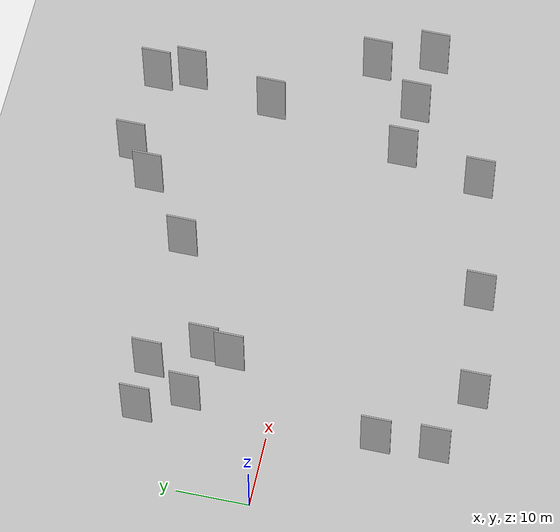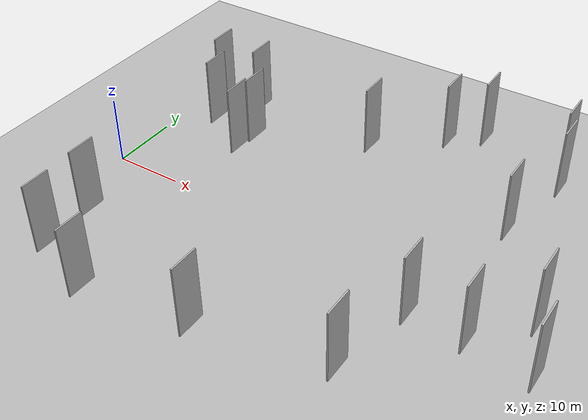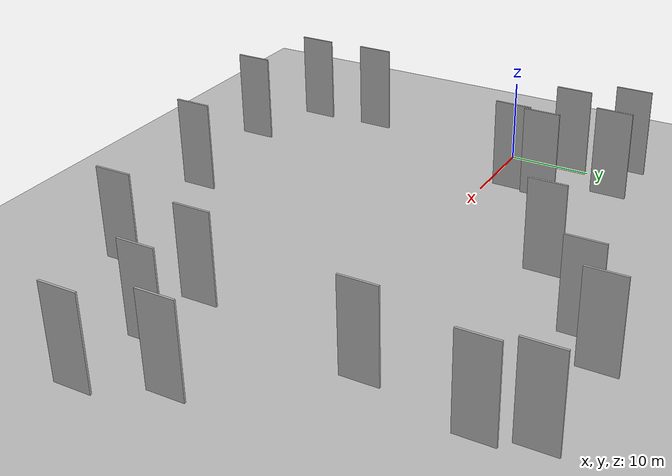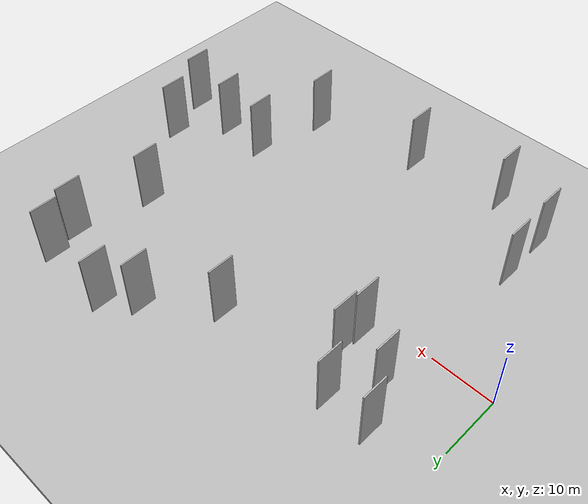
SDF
<?xml version="1.0" encoding="utf-8"?>

<sdf version="1.6">

   <world name="default">

      <gui fullscreen="0">

         <camera name="user_camera">

            <pose>-15 0 4.57585 0 0 0</pose>

            <view_controller>orbit</view_controller>

         </camera>

      </gui>

      <scene>

         <sky>

           <clouds>

             <speed>12</speed>

           </clouds>

         </sky>

         <ambient>0.4 0.4 0.4 1</ambient>

         <background>0.7 0.7 0.7 1</background>

         <shadows>1</shadows>

      </scene>

      <gravity>0 0 -9.8066</gravity>

      <magnetic_field>6e-06 2.3e-05 -4.2e-05</magnetic_field>

      <physics default="0" name="default_physics" type="ode">

         <ode>

            <solver>

               <type>quick</type>

               <iters>10</iters>

               <sor>1.0</sor>

               <use_dynamic_moi_rescaling>0</use_dynamic_moi_rescaling>

            </solver>

            <constraints>

               <cfm>0</cfm>

               <erp>0.2</erp>

               <contact_max_correcting_vel>100</contact_max_correcting_vel>

               <contact_surface_layer>0.001</contact_surface_layer>

            </constraints>

         </ode>

         <max_step_size>0.004</max_step_size>

         <real_time_factor>1</real_time_factor>

         <real_time_update_rate>250</real_time_update_rate>

      </physics>

      <light name="sun" type="directional">

         <cast_shadows>1</cast_shadows>

         <pose>0 0 10 0 0 0</pose>

         <diffuse>0.8 0.8 0.8 1</diffuse>

         <specular>0.2 0.2 0.2 1</specular>

         <attenuation>

            <range>1000</range>

            <constant>0.9</constant>

            <linear>0.01</linear>

            <quadratic>0.001</quadratic>

         </attenuation>

         <direction>-0.5 0.1 -0.9</direction>

      </light>

      <include>

         <name>ground_plane_1</name>

         <uri>model://HANNAS_ground_plane</uri>

         <pose>0 0 0  0 0 0</pose>

      </include>

      <include>

         <name>ground_plane_2</name>

         <uri>model://HANNAS_ground_plane</uri>

         <pose>100 0 0  0 0 0</pose>

      </include>

      <model name="HANNAS_wall_1">

         <static>1</static>

         <pose frame="">59.9722 -9.9413 5.0 0.000000 0.000000 1.570796</pose>

         <link name="link">

            <pose frame="">0 0 5.00 0 0 0</pose>

            <collision name="collision">

               <geometry>

                  <box>

                     <size>4.00 0.2 10.00</size>

                  </box>

               </geometry>

               <max_contacts>10</max_contacts>

               <surface>

                  <contact>

                     <ode/>

                  </contact>

                  <bounce/>

                  <friction>

                     <torsional>

                        <ode/>

                     </torsional>

                     <ode/>

                  </friction>

               </surface>

            </collision>

            <visual name="visual">

               <cast_shadows>0</cast_shadows>

               <geometry>

                  <box>

                     <size>4.00 0.2 10.00</size>

                  </box>

               </geometry>

               <material>

                  <script>

                     <uri>model://HANNAS_wall/materials/scripts</uri>

                     <uri>model://HANNAS_wall/materials/textures</uri>

                     <name>vrc/HANNAS_wall</name>

                  </script>

               </material>

            </visual>

            <self_collide>0</self_collide>

            <enable_wind>0</enable_wind>

            <kinematic>0</kinematic>

         </link>

      </model>

      <model name="HANNAS_wall_2">

         <static>1</static>

         <pose frame="">32.5142 16.6050 5.0 0.000000 0.000000 1.570796</pose>

         <link name="link">

            <pose frame="">0 0 5.00 0 0 0</pose>

            <collision name="collision">

               <geometry>

                  <box>

                     <size>4.00 0.2 10.00</size>

                  </box>

               </geometry>

               <max_contacts>10</max_contacts>

               <surface>

                  <contact>

                     <ode/>

                  </contact>

                  <bounce/>

                  <friction>

                     <torsional>

                        <ode/>

                     </torsional>

                     <ode/>

                  </friction>

               </surface>

            </collision>

            <visual name="visual">

               <cast_shadows>0</cast_shadows>

               <geometry>

                  <box>

                     <size>4.00 0.2 10.00</size>

                  </box>

               </geometry>

               <material>

                  <script>

                     <uri>model://HANNAS_wall/materials/scripts</uri>

                     <uri>model://HANNAS_wall/materials/textures</uri>

                     <name>vrc/HANNAS_wall</name>

                  </script>

               </material>

            </visual>

            <self_collide>0</self_collide>

            <enable_wind>0</enable_wind>

            <kinematic>0</kinematic>

         </link>

      </model>

      <model name="HANNAS_wall_3">

         <static>1</static>

         <pose frame="">65.5373 -3.3900 5.0 0.000000 0.000000 1.570796</pose>

         <link name="link">

            <pose frame="">0 0 5.00 0 0 0</pose>

            <collision name="collision">

               <geometry>

                  <box>

                     <size>4.00 0.2 10.00</size>

                  </box>

               </geometry>

               <max_contacts>10</max_contacts>

               <surface>

                  <contact>

                     <ode/>

                  </contact>

                  <bounce/>

                  <friction>

                     <torsional>

                        <ode/>

                     </torsional>

                     <ode/>

                  </friction>

               </surface>

            </collision>

            <visual name="visual">

               <cast_shadows>0</cast_shadows>

               <geometry>

                  <box>

                     <size>4.00 0.2 10.00</size>

                  </box>

               </geometry>

               <material>

                  <script>

                     <uri>model://HANNAS_wall/materials/scripts</uri>

                     <uri>model://HANNAS_wall/materials/textures</uri>

                     <name>vrc/HANNAS_wall</name>

                  </script>

               </material>

            </visual>

            <self_collide>0</self_collide>

            <enable_wind>0</enable_wind>

            <kinematic>0</kinematic>

         </link>

      </model>

      <model name="HANNAS_wall_4">

         <static>1</static>

         <pose frame="">13.6850 16.7696 5.0 0.000000 0.000000 1.570796</pose>

         <link name="link">

            <pose frame="">0 0 5.00 0 0 0</pose>

            <collision name="collision">

               <geometry>

                  <box>

                     <size>4.00 0.2 10.00</size>

                  </box>

               </geometry>

               <max_contacts>10</max_contacts>

               <surface>

                  <contact>

                     <ode/>

                  </contact>

                  <bounce/>

                  <friction>

                     <torsional>

                        <ode/>

                     </torsional>

                     <ode/>

                  </friction>

               </surface>

            </collision>

            <visual name="visual">

               <cast_shadows>0</cast_shadows>

               <geometry>

                  <box>

                     <size>4.00 0.2 10.00</size>

                  </box>

               </geometry>

               <material>

                  <script>

                     <uri>model://HANNAS_wall/materials/scripts</uri>

                     <uri>model://HANNAS_wall/materials/textures</uri>

                     <name>vrc/HANNAS_wall</name>

                  </script>

               </material>

            </visual>

            <self_collide>0</self_collide>

            <enable_wind>0</enable_wind>

            <kinematic>0</kinematic>

         </link>

      </model>

      <model name="HANNAS_wall_5">

         <static>1</static>

         <pose frame="">18.4142 -26.3215 5.0 0.000000 0.000000 1.570796</pose>

         <link name="link">

            <pose frame="">0 0 5.00 0 0 0</pose>

            <collision name="collision">

               <geometry>

                  <box>

                     <size>4.00 0.2 10.00</size>

                  </box>

               </geometry>

               <max_contacts>10</max_contacts>

               <surface>

                  <contact>

                     <ode/>

                  </contact>

                  <bounce/>

                  <friction>

                     <torsional>

                        <ode/>

                     </torsional>

                     <ode/>

                  </friction>

               </surface>

            </collision>

            <visual name="visual">

               <cast_shadows>0</cast_shadows>

               <geometry>

                  <box>

                     <size>4.00 0.2 10.00</size>

                  </box>

               </geometry>

               <material>

                  <script>

                     <uri>model://HANNAS_wall/materials/scripts</uri>

                     <uri>model://HANNAS_wall/materials/textures</uri>

                     <name>vrc/HANNAS_wall</name>

                  </script>

               </material>

            </visual>

            <self_collide>0</self_collide>

            <enable_wind>0</enable_wind>

            <kinematic>0</kinematic>

         </link>

      </model>

      <model name="HANNAS_wall_6">

         <static>1</static>

         <pose frame="">52.5532 -9.6715 5.0 0.000000 0.000000 1.570796</pose>

         <link name="link">

            <pose frame="">0 0 5.00 0 0 0</pose>

            <collision name="collision">

               <geometry>

                  <box>

                     <size>4.00 0.2 10.00</size>

                  </box>

               </geometry>

               <max_contacts>10</max_contacts>

               <surface>

                  <contact>

                     <ode/>

                  </contact>

                  <bounce/>

                  <friction>

                     <torsional>

                        <ode/>

                     </torsional>

                     <ode/>

                  </friction>

               </surface>

            </collision>

            <visual name="visual">

               <cast_shadows>0</cast_shadows>

               <geometry>

                  <box>

                     <size>4.00 0.2 10.00</size>

                  </box>

               </geometry>

               <material>

                  <script>

                     <uri>model://HANNAS_wall/materials/scripts</uri>

                     <uri>model://HANNAS_wall/materials/textures</uri>

                     <name>vrc/HANNAS_wall</name>

                  </script>

               </material>

            </visual>

            <self_collide>0</self_collide>

            <enable_wind>0</enable_wind>

            <kinematic>0</kinematic>

         </link>

      </model>

      <model name="HANNAS_wall_7">

         <static>1</static>

         <pose frame="">9.1680 -14.9963 5.0 0.000000 0.000000 1.570796</pose>

         <link name="link">

            <pose frame="">0 0 5.00 0 0 0</pose>

            <collision name="collision">

               <geometry>

                  <box>

                     <size>4.00 0.2 10.00</size>

                  </box>

               </geometry>

               <max_contacts>10</max_contacts>

               <surface>

                  <contact>

                     <ode/>

                  </contact>

                  <bounce/>

                  <friction>

                     <torsional>

                        <ode/>

                     </torsional>

                     <ode/>

                  </friction>

               </surface>

            </collision>

            <visual name="visual">

               <cast_shadows>0</cast_shadows>

               <geometry>

                  <box>

                     <size>4.00 0.2 10.00</size>

                  </box>

               </geometry>

               <material>

                  <script>

                     <uri>model://HANNAS_wall/materials/scripts</uri>

                     <uri>model://HANNAS_wall/materials/textures</uri>

                     <name>vrc/HANNAS_wall</name>

                  </script>

               </material>

            </visual>

            <self_collide>0</self_collide>

            <enable_wind>0</enable_wind>

            <kinematic>0</kinematic>

         </link>

      </model>

      <model name="HANNAS_wall_8">

         <static>1</static>

         <pose frame="">6.8715 16.7685 5.0 0.000000 0.000000 1.570796</pose>

         <link name="link">

            <pose frame="">0 0 5.00 0 0 0</pose>

            <collision name="collision">

               <geometry>

                  <box>

                     <size>4.00 0.2 10.00</size>

                  </box>

               </geometry>

               <max_contacts>10</max_contacts>

               <surface>

                  <contact>

                     <ode/>

                  </contact>

                  <bounce/>

                  <friction>

                     <torsional>

                        <ode/>

                     </torsional>

                     <ode/>

                  </friction>

               </surface>

            </collision>

            <visual name="visual">

               <cast_shadows>0</cast_shadows>

               <geometry>

                  <box>

                     <size>4.00 0.2 10.00</size>

                  </box>

               </geometry>

               <material>

                  <script>

                     <uri>model://HANNAS_wall/materials/scripts</uri>

                     <uri>model://HANNAS_wall/materials/textures</uri>

                     <name>vrc/HANNAS_wall</name>

                  </script>

               </material>

            </visual>

            <self_collide>0</self_collide>

            <enable_wind>0</enable_wind>

            <kinematic>0</kinematic>

         </link>

      </model>

      <model name="HANNAS_wall_9">

         <static>1</static>

         <pose frame="">33.0164 -24.2693 5.0 0.000000 0.000000 1.570796</pose>

         <link name="link">

            <pose frame="">0 0 5.00 0 0 0</pose>

            <collision name="collision">

               <geometry>

                  <box>

                     <size>4.00 0.2 10.00</size>

                  </box>

               </geometry>

               <max_contacts>10</max_contacts>

               <surface>

                  <contact>

                     <ode/>

                  </contact>

                  <bounce/>

                  <friction>

                     <torsional>

                        <ode/>

                     </torsional>

                     <ode/>

                  </friction>

               </surface>

            </collision>

            <visual name="visual">

               <cast_shadows>0</cast_shadows>

               <geometry>

                  <box>

                     <size>4.00 0.2 10.00</size>

                  </box>

               </geometry>

               <material>

                  <script>

                     <uri>model://HANNAS_wall/materials/scripts</uri>

                     <uri>model://HANNAS_wall/materials/textures</uri>

                     <name>vrc/HANNAS_wall</name>

                  </script>

               </material>

            </visual>

            <self_collide>0</self_collide>

            <enable_wind>0</enable_wind>

            <kinematic>0</kinematic>

         </link>

      </model>

      <model name="HANNAS_wall_10">

         <static>1</static>

         <pose frame="">68.3442 -10.9178 5.0 0.000000 0.000000 1.570796</pose>

         <link name="link">

            <pose frame="">0 0 5.00 0 0 0</pose>

            <collision name="collision">

               <geometry>

                  <box>

                     <size>4.00 0.2 10.00</size>

                  </box>

               </geometry>

               <max_contacts>10</max_contacts>

               <surface>

                  <contact>

                     <ode/>

                  </contact>

                  <bounce/>

                  <friction>

                     <torsional>

                        <ode/>

                     </torsional>

                     <ode/>

                  </friction>

               </surface>

            </collision>

            <visual name="visual">

               <cast_shadows>0</cast_shadows>

               <geometry>

                  <box>

                     <size>4.00 0.2 10.00</size>

                  </box>

               </geometry>

               <material>

                  <script>

                     <uri>model://HANNAS_wall/materials/scripts</uri>

                     <uri>model://HANNAS_wall/materials/textures</uri>

                     <name>vrc/HANNAS_wall</name>

                  </script>

               </material>

            </visual>

            <self_collide>0</self_collide>

            <enable_wind>0</enable_wind>

            <kinematic>0</kinematic>

         </link>

      </model>

      <model name="HANNAS_wall_11">

         <static>1</static>

         <pose frame="">16.9651 6.4746 5.0 0.000000 0.000000 1.570796</pose>

         <link name="link">

            <pose frame="">0 0 5.00 0 0 0</pose>

            <collision name="collision">

               <geometry>

                  <box>

                     <size>4.00 0.2 10.00</size>

                  </box>

               </geometry>

               <max_contacts>10</max_contacts>

               <surface>

                  <contact>

                     <ode/>

                  </contact>

                  <bounce/>

                  <friction>

                     <torsional>

                        <ode/>

                     </torsional>

                     <ode/>

                  </friction>

               </surface>

            </collision>

            <visual name="visual">

               <cast_shadows>0</cast_shadows>

               <geometry>

                  <box>

                     <size>4.00 0.2 10.00</size>

                  </box>

               </geometry>

               <material>

                  <script>

                     <uri>model://HANNAS_wall/materials/scripts</uri>

                     <uri>model://HANNAS_wall/materials/textures</uri>

                     <name>vrc/HANNAS_wall</name>

                  </script>

               </material>

            </visual>

            <self_collide>0</self_collide>

            <enable_wind>0</enable_wind>

            <kinematic>0</kinematic>

         </link>

      </model>

      <model name="HANNAS_wall_12">

         <static>1</static>

         <pose frame="">56.1804 9.6428 5.0 0.000000 0.000000 1.570796</pose>

         <link name="link">

            <pose frame="">0 0 5.00 0 0 0</pose>

            <collision name="collision">

               <geometry>

                  <box>

                     <size>4.00 0.2 10.00</size>

                  </box>

               </geometry>

               <max_contacts>10</max_contacts>

               <surface>

                  <contact>

                     <ode/>

                  </contact>

                  <bounce/>

                  <friction>

                     <torsional>

                        <ode/>

                     </torsional>

                     <ode/>

                  </friction>

               </surface>

            </collision>

            <visual name="visual">

               <cast_shadows>0</cast_shadows>

               <geometry>

                  <box>

                     <size>4.00 0.2 10.00</size>

                  </box>

               </geometry>

               <material>

                  <script>

                     <uri>model://HANNAS_wall/materials/scripts</uri>

                     <uri>model://HANNAS_wall/materials/textures</uri>

                     <name>vrc/HANNAS_wall</name>

                  </script>

               </material>

            </visual>

            <self_collide>0</self_collide>

            <enable_wind>0</enable_wind>

            <kinematic>0</kinematic>

         </link>

      </model>

      <model name="HANNAS_wall_13">

         <static>1</static>

         <pose frame="">17.4186 9.9697 5.0 0.000000 0.000000 1.570796</pose>

         <link name="link">

            <pose frame="">0 0 5.00 0 0 0</pose>

            <collision name="collision">

               <geometry>

                  <box>

                     <size>4.00 0.2 10.00</size>

                  </box>

               </geometry>

               <max_contacts>10</max_contacts>

               <surface>

                  <contact>

                     <ode/>

                  </contact>

                  <bounce/>

                  <friction>

                     <torsional>

                        <ode/>

                     </torsional>

                     <ode/>

                  </friction>

               </surface>

            </collision>

            <visual name="visual">

               <cast_shadows>0</cast_shadows>

               <geometry>

                  <box>

                     <size>4.00 0.2 10.00</size>

                  </box>

               </geometry>

               <material>

                  <script>

                     <uri>model://HANNAS_wall/materials/scripts</uri>

                     <uri>model://HANNAS_wall/materials/textures</uri>

                     <name>vrc/HANNAS_wall</name>

                  </script>

               </material>

            </visual>

            <self_collide>0</self_collide>

            <enable_wind>0</enable_wind>

            <kinematic>0</kinematic>

         </link>

      </model>

      <model name="HANNAS_wall_14">

         <static>1</static>

         <pose frame="">9.9808 10.8772 5.0 0.000000 0.000000 1.570796</pose>

         <link name="link">

            <pose frame="">0 0 5.00 0 0 0</pose>

            <collision name="collision">

               <geometry>

                  <box>

                     <size>4.00 0.2 10.00</size>

                  </box>

               </geometry>

               <max_contacts>10</max_contacts>

               <surface>

                  <contact>

                     <ode/>

                  </contact>

                  <bounce/>

                  <friction>

                     <torsional>

                        <ode/>

                     </torsional>

                     <ode/>

                  </friction>

               </surface>

            </collision>

            <visual name="visual">

               <cast_shadows>0</cast_shadows>

               <geometry>

                  <box>

                     <size>4.00 0.2 10.00</size>

                  </box>

               </geometry>

               <material>

                  <script>

                     <uri>model://HANNAS_wall/materials/scripts</uri>

                     <uri>model://HANNAS_wall/materials/textures</uri>

                     <name>vrc/HANNAS_wall</name>

                  </script>

               </material>

            </visual>

            <self_collide>0</self_collide>

            <enable_wind>0</enable_wind>

            <kinematic>0</kinematic>

         </link>

      </model>

      <model name="HANNAS_wall_15">

         <static>1</static>

         <pose frame="">57.3268 26.0810 5.0 0.000000 0.000000 1.570796</pose>

         <link name="link">

            <pose frame="">0 0 5.00 0 0 0</pose>

            <collision name="collision">

               <geometry>

                  <box>

                     <size>4.00 0.2 10.00</size>

                  </box>

               </geometry>

               <max_contacts>10</max_contacts>

               <surface>

                  <contact>

                     <ode/>

                  </contact>

                  <bounce/>

                  <friction>

                     <torsional>

                        <ode/>

                     </torsional>

                     <ode/>

                  </friction>

               </surface>

            </collision>

            <visual name="visual">

               <cast_shadows>0</cast_shadows>

               <geometry>

                  <box>

                     <size>4.00 0.2 10.00</size>

                  </box>

               </geometry>

               <material>

                  <script>

                     <uri>model://HANNAS_wall/materials/scripts</uri>

                     <uri>model://HANNAS_wall/materials/textures</uri>

                     <name>vrc/HANNAS_wall</name>

                  </script>

               </material>

            </visual>

            <self_collide>0</self_collide>

            <enable_wind>0</enable_wind>

            <kinematic>0</kinematic>

         </link>

      </model>

      <model name="HANNAS_wall_16">

         <static>1</static>

         <pose frame="">58.5531 21.3435 5.0 0.000000 0.000000 1.570796</pose>

         <link name="link">

            <pose frame="">0 0 5.00 0 0 0</pose>

            <collision name="collision">

               <geometry>

                  <box>

                     <size>4.00 0.2 10.00</size>

                  </box>

               </geometry>

               <max_contacts>10</max_contacts>

               <surface>

                  <contact>

                     <ode/>

                  </contact>

                  <bounce/>

                  <friction>

                     <torsional>

                        <ode/>

                     </torsional>

                     <ode/>

                  </friction>

               </surface>

            </collision>

            <visual name="visual">

               <cast_shadows>0</cast_shadows>

               <geometry>

                  <box>

                     <size>4.00 0.2 10.00</size>

                  </box>

               </geometry>

               <material>

                  <script>

                     <uri>model://HANNAS_wall/materials/scripts</uri>

                     <uri>model://HANNAS_wall/materials/textures</uri>

                     <name>vrc/HANNAS_wall</name>

                  </script>

               </material>

            </visual>

            <self_collide>0</self_collide>

            <enable_wind>0</enable_wind>

            <kinematic>0</kinematic>

         </link>

      </model>

      <model name="HANNAS_wall_17">

         <static>1</static>

         <pose frame="">41.2168 23.4798 5.0 0.000000 0.000000 1.570796</pose>

         <link name="link">

            <pose frame="">0 0 5.00 0 0 0</pose>

            <collision name="collision">

               <geometry>

                  <box>

                     <size>4.00 0.2 10.00</size>

                  </box>

               </geometry>

               <max_contacts>10</max_contacts>

               <surface>

                  <contact>

                     <ode/>

                  </contact>

                  <bounce/>

                  <friction>

                     <torsional>

                        <ode/>

                     </torsional>

                     <ode/>

                  </friction>

               </surface>

            </collision>

            <visual name="visual">

               <cast_shadows>0</cast_shadows>

               <geometry>

                  <box>

                     <size>4.00 0.2 10.00</size>

                  </box>

               </geometry>

               <material>

                  <script>

                     <uri>model://HANNAS_wall/materials/scripts</uri>

                     <uri>model://HANNAS_wall/materials/textures</uri>

                     <name>vrc/HANNAS_wall</name>

                  </script>

               </material>

            </visual>

            <self_collide>0</self_collide>

            <enable_wind>0</enable_wind>

            <kinematic>0</kinematic>

         </link>

      </model>

      <model name="HANNAS_wall_18">

         <static>1</static>

         <pose frame="">9.5256 -22.8456 5.0 0.000000 0.000000 1.570796</pose>

         <link name="link">

            <pose frame="">0 0 5.00 0 0 0</pose>

            <collision name="collision">

               <geometry>

                  <box>

                     <size>4.00 0.2 10.00</size>

                  </box>

               </geometry>

               <max_contacts>10</max_contacts>

               <surface>

                  <contact>

                     <ode/>

                  </contact>

                  <bounce/>

                  <friction>

                     <torsional>

                        <ode/>

                     </torsional>

                     <ode/>

                  </friction>

               </surface>

            </collision>

            <visual name="visual">

               <cast_shadows>0</cast_shadows>

               <geometry>

                  <box>

                     <size>4.00 0.2 10.00</size>

                  </box>

               </geometry>

               <material>

                  <script>

                     <uri>model://HANNAS_wall/materials/scripts</uri>

                     <uri>model://HANNAS_wall/materials/textures</uri>

                     <name>vrc/HANNAS_wall</name>

                  </script>

               </material>

            </visual>

            <self_collide>0</self_collide>

            <enable_wind>0</enable_wind>

            <kinematic>0</kinematic>

         </link>

      </model>

      <model name="HANNAS_wall_19">

         <static>1</static>

         <pose frame="">50.0445 -20.8478 5.0 0.000000 0.000000 1.570796</pose>

         <link name="link">

            <pose frame="">0 0 5.00 0 0 0</pose>

            <collision name="collision">

               <geometry>

                  <box>

                     <size>4.00 0.2 10.00</size>

                  </box>

               </geometry>

               <max_contacts>10</max_contacts>

               <surface>

                  <contact>

                     <ode/>

                  </contact>

                  <bounce/>

                  <friction>

                     <torsional>

                        <ode/>

                     </torsional>

                     <ode/>

                  </friction>

               </surface>

            </collision>

            <visual name="visual">

               <cast_shadows>0</cast_shadows>

               <geometry>

                  <box>

                     <size>4.00 0.2 10.00</size>

                  </box>

               </geometry>

               <material>

                  <script>

                     <uri>model://HANNAS_wall/materials/scripts</uri>

                     <uri>model://HANNAS_wall/materials/textures</uri>

                     <name>vrc/HANNAS_wall</name>

                  </script>

               </material>

            </visual>

            <self_collide>0</self_collide>

            <enable_wind>0</enable_wind>

            <kinematic>0</kinematic>

         </link>

      </model>

      <model name="HANNAS_wall_20">

         <static>1</static>

         <pose frame="">45.4521 26.7767 5.0 0.000000 0.000000 1.570796</pose>

         <link name="link">

            <pose frame="">0 0 5.00 0 0 0</pose>

            <collision name="collision">

               <geometry>

                  <box>

                     <size>4.00 0.2 10.00</size>

                  </box>

               </geometry>

               <max_contacts>10</max_contacts>

               <surface>

                  <contact>

                     <ode/>

                  </contact>

                  <bounce/>

                  <friction>

                     <torsional>

                        <ode/>

                     </torsional>

                     <ode/>

                  </friction>

               </surface>

            </collision>

            <visual name="visual">

               <cast_shadows>0</cast_shadows>

               <geometry>

                  <box>

                     <size>4.00 0.2 10.00</size>

                  </box>

               </geometry>

               <material>

                  <script>

                     <uri>model://HANNAS_wall/materials/scripts</uri>

                     <uri>model://HANNAS_wall/materials/textures</uri>

                     <name>vrc/HANNAS_wall</name>

                  </script>

               </material>

            </visual>

            <self_collide>0</self_collide>

            <enable_wind>0</enable_wind>

            <kinematic>0</kinematic>

         </link>

      </model>

   </world>

</sdf>

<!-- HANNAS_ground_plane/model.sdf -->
<sdf version="1.4">
<model name="HANNAS_ground_plane">
  <static>true</static>
    <link name="link">
      <collision name="collision">
        <geometry>
          <plane>
            <normal>0 0 1</normal>
            <size>1000 1000</size>
          </plane>
        </geometry>
        <surface>
          <friction>
            <ode>
              <mu>100</mu>
              <mu2>50</mu2>
            </ode>
          </friction>
        </surface>
      </collision>
      <visual name="visual">
        <cast_shadows>false</cast_shadows>
        <geometry>
          <plane>
            <normal>0 0 1</normal>
            <size>1000 1000</size>
          </plane>
        </geometry>
        <material>
          <script>
            <uri>model://HANNAS_ground_plane/materials/scripts/HANNAS_ground_plane.material</uri>
	    <uri>model://HANNAS_ground_plane/materials/textures</uri>
            <name>HANNASGroundPlane/Image</name>
          </script>
        </material>
      </visual>
    </link>
  </model>
</sdf>
